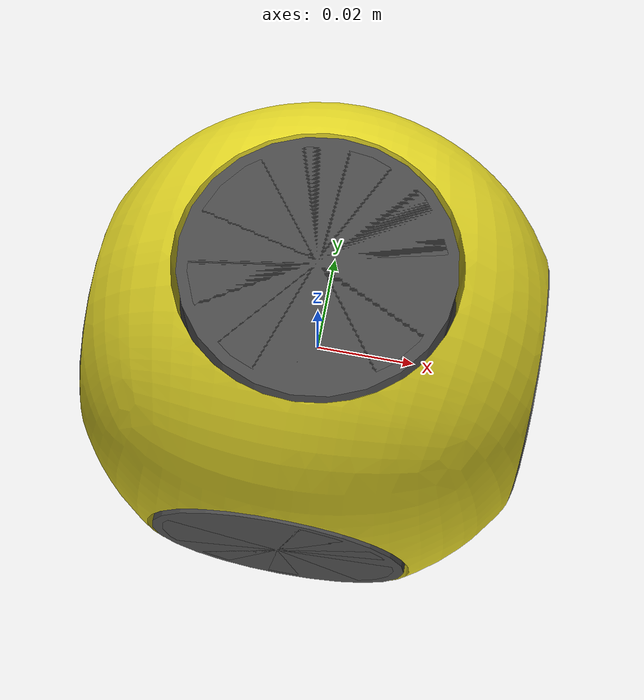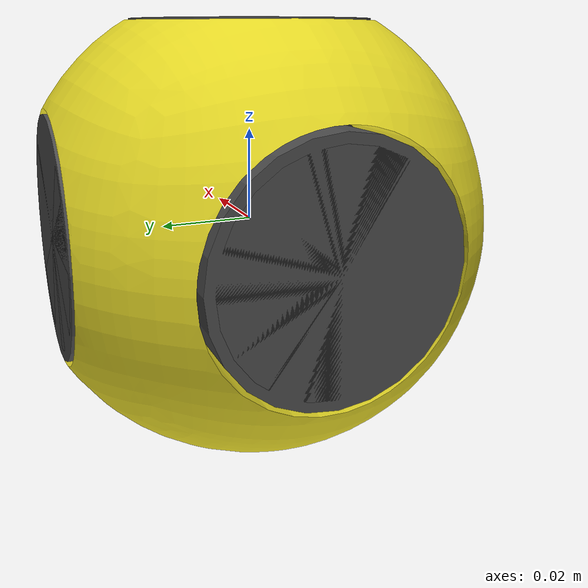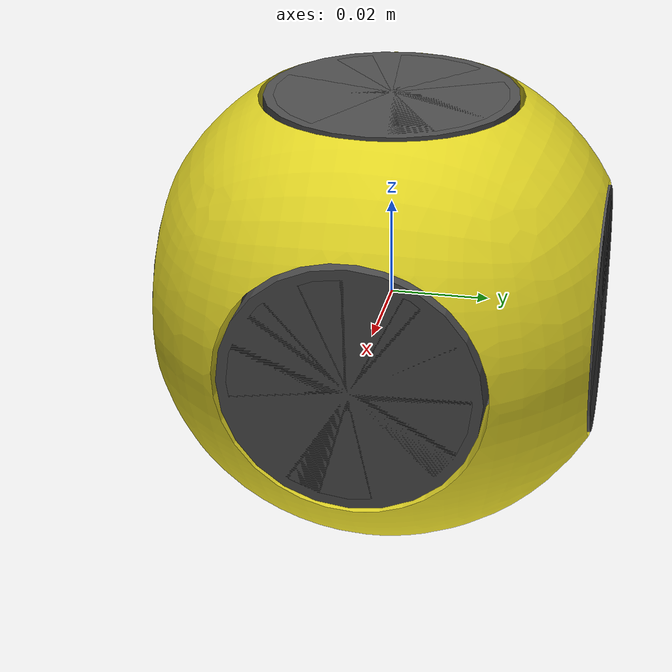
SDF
<?xml version='1.0'?>
<sdf version='1.6'>
    <model name='oneShoeModule'>
        <link name='shoe'>
            <self_collide>false</self_collide>
            <inertial>
                <mass>0.1</mass>
                <inertia>
                    <ixx>4e-04</ixx>
                    <ixy>0</ixy>
                    <ixz>0</ixz>
                    <iyy>4e-04</iyy>
                    <iyz>0</iyz>
                    <izz>4e-04</izz>
                </inertia>
            </inertial>
            <collision name='shoe-collision'>
                <geometry>
                    <mesh>
                        <uri>model://oneShoeModule/meshes/model.obj</uri>
                        <scale>0.001 0.001 0.001</scale>
                    </mesh>
                </geometry>
            </collision>
            <visual name='shoe-visual'>
                <pose>0 0 0 0 0 0</pose>
                <geometry>
                    <mesh>
                        <uri>model://oneShoeModule/meshes/model.obj</uri>
                        <scale>0.001 0.001 0.001</scale>
                    </mesh>
                </geometry>
                <material>
                    <lighting>1</lighting>
                    <script>
                        <uri>file://media/materials/scripts/gazebo.material</uri>
                        <name>Gazebo/Yellow</name>
                    </script>
                    <shader type='pixel'>
                        <normal_map>__default__</normal_map>
                    </shader>
                </material>
            </visual>
        </link>

        <model name='connectorPlusX'>
            <pose>0.043 0 0 -1.5708 0 -1.5708</pose>
            <link name='connectorPlusX__outer'>
                <inertial>
                    <pose>0 0 -8.5e-3 0 0 0</pose>
                    <mass>10e-3</mass>
                    <inertia>
                        <ixx>1.775833e-6</ixx>
                        <iyy>1.775833e-6</iyy>
                        <izz>3.125e-6</izz>
                        <ixy>0.0</ixy>
                        <ixz>0.0</ixz>
                        <iyz>0.0</iyz>
                    </inertia>
                </inertial>
                <collision name='outer-collision'>
                    <pose>0 0 -8.5e-3 0 0 0</pose>
                    <geometry>
                        <cylinder>
                            <radius>25e-3</radius>
                            <length>17e-3</length>
                        </cylinder>
                    </geometry>
                </collision>
                <visual name='outer-visual'>
                    <pose>0 0 -8.5e-3 0 0 0</pose>
                    <geometry>
                        <cylinder>
                            <radius>25e-3</radius>
                            <length>17e-3</length>
                        </cylinder>
                    </geometry>
                    <material>
                        <script>
                            <uri>file://media/materials/scripts/gazebo.material</uri>
                            <name>Gazebo/DarkGrey</name>
                        </script>
                    </material>
                </visual>
            </link>
            <link name='connectorPlusX__inner'>
                <inertial>
                    <pose>0 0 -3.5e-3 0 0 0</pose>
                    <mass>10e-3</mass>
                    <inertia>
                        <ixx>1.3633e-6</ixx>
                        <iyy>1.3633e-6</iyy>
                        <izz>2.645e-6</izz>
                        <ixy>0.0</ixy>
                        <ixz>0.0</ixz>
                        <iyz>0.0</iyz>
                    </inertia>
                </inertial>
                <collision name='inner-collision'>
                    <pose>0 0 -3.5e-3 0 0 0</pose>
                    <geometry>
                        <cylinder>
                            <radius>23e-3</radius>
                            <length>7e-3</length>
                        </cylinder>
                    </geometry>
                </collision>
                <visual name='inner-visual'>
                    <pose>0 0 -3.5e-3 0 0 0</pose>
                    <geometry>
                        <cylinder>
                            <radius>23e-3</radius>
                            <length>7e-3</length>
                        </cylinder>
                    </geometry>
                    <material>
                        <script>
                            <uri>file://media/materials/scripts/gazebo.material</uri>
                            <name>Gazebo/DarkGrey</name>
                        </script>
                    </material>
                </visual>
            </link>
            <joint name='connectorPlusX__extendJoint' type='prismatic'>
                <parent>connectorPlusX__outer</parent>
                <child>connectorPlusX__inner</child>
                <axis>
                    <xyz>0 0 1</xyz>
                    <limit>
                        <lower>0</lower>
                        <upper>7e-3</upper>
                        <effort>50</effort>
                        <velocity>25e-3</velocity>
                    </limit>
                    <dynamics>
                        <friction>0</friction>
                        <spring_reference>0</spring_reference>
                        <spring_stiffness>0</spring_stiffness>
                    </dynamics>
                    <use_parent_model_frame>1</use_parent_model_frame>
                </axis>
            </joint>
            <plugin name='rofi::sim::systems::RoFICoMPlugin' filename='roficomPlugin'>
                <joint>connectorPlusX__extendJoint</joint>
                <extend>false</extend>
            </plugin>
        </model>

        <model name='connectorMinusX'>
            <pose>-0.043 0 0 -1.5708 0 1.5708</pose>
            <link name='connectorMinusX__outer'>
                <inertial>
                    <pose>0 0 -8.5e-3 0 0 0</pose>
                    <mass>10e-3</mass>
                    <inertia>
                        <ixx>1.775833e-6</ixx>
                        <iyy>1.775833e-6</iyy>
                        <izz>3.125e-6</izz>
                        <ixy>0.0</ixy>
                        <ixz>0.0</ixz>
                        <iyz>0.0</iyz>
                    </inertia>
                </inertial>
                <collision name='outer-collision'>
                    <pose>0 0 -8.5e-3 0 0 0</pose>
                    <geometry>
                        <cylinder>
                            <radius>25e-3</radius>
                            <length>17e-3</length>
                        </cylinder>
                    </geometry>
                </collision>
                <visual name='outer-visual'>
                    <pose>0 0 -8.5e-3 0 0 0</pose>
                    <geometry>
                        <cylinder>
                            <radius>25e-3</radius>
                            <length>17e-3</length>
                        </cylinder>
                    </geometry>
                    <material>
                        <script>
                            <uri>file://media/materials/scripts/gazebo.material</uri>
                            <name>Gazebo/DarkGrey</name>
                        </script>
                    </material>
                </visual>
            </link>
            <link name='connectorMinusX__inner'>
                <inertial>
                    <pose>0 0 -3.5e-3 0 0 0</pose>
                    <mass>10e-3</mass>
                    <inertia>
                        <ixx>1.3633e-6</ixx>
                        <iyy>1.3633e-6</iyy>
                        <izz>2.645e-6</izz>
                        <ixy>0.0</ixy>
                        <ixz>0.0</ixz>
                        <iyz>0.0</iyz>
                    </inertia>
                </inertial>
                <collision name='inner-collision'>
                    <pose>0 0 -3.5e-3 0 0 0</pose>
                    <geometry>
                        <cylinder>
                            <radius>23e-3</radius>
                            <length>7e-3</length>
                        </cylinder>
                    </geometry>
                </collision>
                <visual name='inner-visual'>
                    <pose>0 0 -3.5e-3 0 0 0</pose>
                    <geometry>
                        <cylinder>
                            <radius>23e-3</radius>
                            <length>7e-3</length>
                        </cylinder>
                    </geometry>
                    <material>
                        <script>
                            <uri>file://media/materials/scripts/gazebo.material</uri>
                            <name>Gazebo/DarkGrey</name>
                        </script>
                    </material>
                </visual>
            </link>
            <joint name='connectorMinusX__extendJoint' type='prismatic'>
                <parent>connectorMinusX__outer</parent>
                <child>connectorMinusX__inner</child>
                <axis>
                    <xyz>0 0 1</xyz>
                    <limit>
                        <lower>0</lower>
                        <upper>7e-3</upper>
                        <effort>50</effort>
                        <velocity>25e-3</velocity>
                    </limit>
                    <dynamics>
                        <friction>0</friction>
                        <spring_reference>0</spring_reference>
                        <spring_stiffness>0</spring_stiffness>
                    </dynamics>
                    <use_parent_model_frame>1</use_parent_model_frame>
                </axis>
            </joint>
            <plugin name='rofi::sim::systems::RoFICoMPlugin' filename='roficomPlugin'>
                <joint>connectorMinusX__extendJoint</joint>
                <extend>false</extend>
            </plugin>
        </model>

        <model name='connectorPlusY'>
            <pose>0 0.043 0 -1.5708 0 0</pose>
            <link name='connectorPlusY__outer'>
                <inertial>
                    <pose>0 0 -8.5e-3 0 0 0</pose>
                    <mass>10e-3</mass>
                    <inertia>
                        <ixx>1.775833e-6</ixx>
                        <iyy>1.775833e-6</iyy>
                        <izz>3.125e-6</izz>
                        <ixy>0.0</ixy>
                        <ixz>0.0</ixz>
                        <iyz>0.0</iyz>
                    </inertia>
                </inertial>
                <collision name='outer-collision'>
                    <pose>0 0 -8.5e-3 0 0 0</pose>
                    <geometry>
                        <cylinder>
                            <radius>25e-3</radius>
                            <length>17e-3</length>
                        </cylinder>
                    </geometry>
                </collision>
                <visual name='outer-visual'>
                    <pose>0 0 -8.5e-3 0 0 0</pose>
                    <geometry>
                        <cylinder>
                            <radius>25e-3</radius>
                            <length>17e-3</length>
                        </cylinder>
                    </geometry>
                    <material>
                        <script>
                            <uri>file://media/materials/scripts/gazebo.material</uri>
                            <name>Gazebo/DarkGrey</name>
                        </script>
                    </material>
                </visual>
            </link>
            <link name='connectorPlusY__inner'>
                <inertial>
                    <pose>0 0 -3.5e-3 0 0 0</pose>
                    <mass>10e-3</mass>
                    <inertia>
                        <ixx>1.3633e-6</ixx>
                        <iyy>1.3633e-6</iyy>
                        <izz>2.645e-6</izz>
                        <ixy>0.0</ixy>
                        <ixz>0.0</ixz>
                        <iyz>0.0</iyz>
                    </inertia>
                </inertial>
                <collision name='inner-collision'>
                    <pose>0 0 -3.5e-3 0 0 0</pose>
                    <geometry>
                        <cylinder>
                            <radius>23e-3</radius>
                            <length>7e-3</length>
                        </cylinder>
                    </geometry>
                </collision>
                <visual name='inner-visual'>
                    <pose>0 0 -3.5e-3 0 0 0</pose>
                    <geometry>
                        <cylinder>
                            <radius>23e-3</radius>
                            <length>7e-3</length>
                        </cylinder>
                    </geometry>
                    <material>
                        <script>
                            <uri>file://media/materials/scripts/gazebo.material</uri>
                            <name>Gazebo/DarkGrey</name>
                        </script>
                    </material>
                </visual>
            </link>
            <joint name='connectorPlusY__extendJoint' type='prismatic'>
                <parent>connectorPlusY__outer</parent>
                <child>connectorPlusY__inner</child>
                <axis>
                    <xyz>0 0 1</xyz>
                    <limit>
                        <lower>0</lower>
                        <upper>7e-3</upper>
                        <effort>50</effort>
                        <velocity>25e-3</velocity>
                    </limit>
                    <dynamics>
                        <friction>0</friction>
                        <spring_reference>0</spring_reference>
                        <spring_stiffness>0</spring_stiffness>
                    </dynamics>
                    <use_parent_model_frame>1</use_parent_model_frame>
                </axis>
            </joint>
            <plugin name='rofi::sim::systems::RoFICoMPlugin' filename='roficomPlugin'>
                <joint>connectorPlusY__extendJoint</joint>
                <extend>false</extend>
            </plugin>
        </model>

        <model name='connectorMinusY'>
            <pose>0 -0.043 0 1.5708 0 0</pose>
            <link name='connectorMinusY__outer'>
                <inertial>
                    <pose>0 0 -8.5e-3 0 0 0</pose>
                    <mass>10e-3</mass>
                    <inertia>
                        <ixx>1.775833e-6</ixx>
                        <iyy>1.775833e-6</iyy>
                        <izz>3.125e-6</izz>
                        <ixy>0.0</ixy>
                        <ixz>0.0</ixz>
                        <iyz>0.0</iyz>
                    </inertia>
                </inertial>
                <collision name='outer-collision'>
                    <pose>0 0 -8.5e-3 0 0 0</pose>
                    <geometry>
                        <cylinder>
                            <radius>25e-3</radius>
                            <length>17e-3</length>
                        </cylinder>
                    </geometry>
                </collision>
                <visual name='outer-visual'>
                    <pose>0 0 -8.5e-3 0 0 0</pose>
                    <geometry>
                        <cylinder>
                            <radius>25e-3</radius>
                            <length>17e-3</length>
                        </cylinder>
                    </geometry>
                    <material>
                        <script>
                            <uri>file://media/materials/scripts/gazebo.material</uri>
                            <name>Gazebo/DarkGrey</name>
                        </script>
                    </material>
                </visual>
            </link>
            <link name='connectorMinusY__inner'>
                <inertial>
                    <pose>0 0 -3.5e-3 0 0 0</pose>
                    <mass>10e-3</mass>
                    <inertia>
                        <ixx>1.3633e-6</ixx>
                        <iyy>1.3633e-6</iyy>
                        <izz>2.645e-6</izz>
                        <ixy>0.0</ixy>
                        <ixz>0.0</ixz>
                        <iyz>0.0</iyz>
                    </inertia>
                </inertial>
                <collision name='inner-collision'>
                    <pose>0 0 -3.5e-3 0 0 0</pose>
                    <geometry>
                        <cylinder>
                            <radius>23e-3</radius>
                            <length>7e-3</length>
                        </cylinder>
                    </geometry>
                </collision>
                <visual name='inner-visual'>
                    <pose>0 0 -3.5e-3 0 0 0</pose>
                    <geometry>
                        <cylinder>
                            <radius>23e-3</radius>
                            <length>7e-3</length>
                        </cylinder>
                    </geometry>
                    <material>
                        <script>
                            <uri>file://media/materials/scripts/gazebo.material</uri>
                            <name>Gazebo/DarkGrey</name>
                        </script>
                    </material>
                </visual>
            </link>
            <joint name='connectorMinusY__extendJoint' type='prismatic'>
                <parent>connectorMinusY__outer</parent>
                <child>connectorMinusY__inner</child>
                <axis>
                    <xyz>0 0 1</xyz>
                    <limit>
                        <lower>0</lower>
                        <upper>7e-3</upper>
                        <effort>50</effort>
                        <velocity>25e-3</velocity>
                    </limit>
                    <dynamics>
                        <friction>0</friction>
                        <spring_reference>0</spring_reference>
                        <spring_stiffness>0</spring_stiffness>
                    </dynamics>
                    <use_parent_model_frame>1</use_parent_model_frame>
                </axis>
            </joint>
            <plugin name='rofi::sim::systems::RoFICoMPlugin' filename='roficomPlugin'>
                <joint>connectorMinusY__extendJoint</joint>
                <extend>false</extend>
            </plugin>
        </model>

        <model name='connectorPlusZ'>
            <pose>0 0 0.043 0 0 0</pose>
            <link name='connectorPlusZ__outer'>
                <inertial>
                    <pose>0 0 -8.5e-3 0 0 0</pose>
                    <mass>10e-3</mass>
                    <inertia>
                        <ixx>1.775833e-6</ixx>
                        <iyy>1.775833e-6</iyy>
                        <izz>3.125e-6</izz>
                        <ixy>0.0</ixy>
                        <ixz>0.0</ixz>
                        <iyz>0.0</iyz>
                    </inertia>
                </inertial>
                <collision name='outer-collision'>
                    <pose>0 0 -8.5e-3 0 0 0</pose>
                    <geometry>
                        <cylinder>
                            <radius>25e-3</radius>
                            <length>17e-3</length>
                        </cylinder>
                    </geometry>
                </collision>
                <visual name='outer-visual'>
                    <pose>0 0 -8.5e-3 0 0 0</pose>
                    <geometry>
                        <cylinder>
                            <radius>25e-3</radius>
                            <length>17e-3</length>
                        </cylinder>
                    </geometry>
                    <material>
                        <script>
                            <uri>file://media/materials/scripts/gazebo.material</uri>
                            <name>Gazebo/DarkGrey</name>
                        </script>
                    </material>
                </visual>
            </link>
            <link name='connectorPlusZ__inner'>
                <inertial>
                    <pose>0 0 -3.5e-3 0 0 0</pose>
                    <mass>10e-3</mass>
                    <inertia>
                        <ixx>1.3633e-6</ixx>
                        <iyy>1.3633e-6</iyy>
                        <izz>2.645e-6</izz>
                        <ixy>0.0</ixy>
                        <ixz>0.0</ixz>
                        <iyz>0.0</iyz>
                    </inertia>
                </inertial>
                <collision name='inner-collision'>
                    <pose>0 0 -3.5e-3 0 0 0</pose>
                    <geometry>
                        <cylinder>
                            <radius>23e-3</radius>
                            <length>7e-3</length>
                        </cylinder>
                    </geometry>
                </collision>
                <visual name='inner-visual'>
                    <pose>0 0 -3.5e-3 0 0 0</pose>
                    <geometry>
                        <cylinder>
                            <radius>23e-3</radius>
                            <length>7e-3</length>
                        </cylinder>
                    </geometry>
                    <material>
                        <script>
                            <uri>file://media/materials/scripts/gazebo.material</uri>
                            <name>Gazebo/DarkGrey</name>
                        </script>
                    </material>
                </visual>
            </link>
            <joint name='connectorPlusZ__extendJoint' type='prismatic'>
                <parent>connectorPlusZ__outer</parent>
                <child>connectorPlusZ__inner</child>
                <axis>
                    <xyz>0 0 1</xyz>
                    <limit>
                        <lower>0</lower>
                        <upper>7e-3</upper>
                        <effort>50</effort>
                        <velocity>25e-3</velocity>
                    </limit>
                    <dynamics>
                        <friction>0</friction>
                        <spring_reference>0</spring_reference>
                        <spring_stiffness>0</spring_stiffness>
                    </dynamics>
                    <use_parent_model_frame>1</use_parent_model_frame>
                </axis>
            </joint>
            <plugin name='rofi::sim::systems::RoFICoMPlugin' filename='roficomPlugin'>
                <joint>connectorPlusZ__extendJoint</joint>
                <extend>false</extend>
            </plugin>
        </model>

        <model name='connectorMinusZ'>
            <pose>0 0 -0.043 3.1416 0 0</pose>
            <link name='connectorMinusZ__outer'>
                <inertial>
                    <pose>0 0 -8.5e-3 0 0 0</pose>
                    <mass>10e-3</mass>
                    <inertia>
                        <ixx>1.775833e-6</ixx>
                        <iyy>1.775833e-6</iyy>
                        <izz>3.125e-6</izz>
                        <ixy>0.0</ixy>
                        <ixz>0.0</ixz>
                        <iyz>0.0</iyz>
                    </inertia>
                </inertial>
                <collision name='outer-collision'>
                    <pose>0 0 -8.5e-3 0 0 0</pose>
                    <geometry>
                        <cylinder>
                            <radius>25e-3</radius>
                            <length>17e-3</length>
                        </cylinder>
                    </geometry>
                </collision>
                <visual name='outer-visual'>
                    <pose>0 0 -8.5e-3 0 0 0</pose>
                    <geometry>
                        <cylinder>
                            <radius>25e-3</radius>
                            <length>17e-3</length>
                        </cylinder>
                    </geometry>
                    <material>
                        <script>
                            <uri>file://media/materials/scripts/gazebo.material</uri>
                            <name>Gazebo/DarkGrey</name>
                        </script>
                    </material>
                </visual>
            </link>
            <link name='connectorMinusZ__inner'>
                <inertial>
                    <pose>0 0 -3.5e-3 0 0 0</pose>
                    <mass>10e-3</mass>
                    <inertia>
                        <ixx>1.3633e-6</ixx>
                        <iyy>1.3633e-6</iyy>
                        <izz>2.645e-6</izz>
                        <ixy>0.0</ixy>
                        <ixz>0.0</ixz>
                        <iyz>0.0</iyz>
                    </inertia>
                </inertial>
                <collision name='inner-collision'>
                    <pose>0 0 -3.5e-3 0 0 0</pose>
                    <geometry>
                        <cylinder>
                            <radius>23e-3</radius>
                            <length>7e-3</length>
                        </cylinder>
                    </geometry>
                </collision>
                <visual name='inner-visual'>
                    <pose>0 0 -3.5e-3 0 0 0</pose>
                    <geometry>
                        <cylinder>
                            <radius>23e-3</radius>
                            <length>7e-3</length>
                        </cylinder>
                    </geometry>
                    <material>
                        <script>
                            <uri>file://media/materials/scripts/gazebo.material</uri>
                            <name>Gazebo/DarkGrey</name>
                        </script>
                    </material>
                </visual>
            </link>
            <joint name='connectorMinusZ__extendJoint' type='prismatic'>
                <parent>connectorMinusZ__outer</parent>
                <child>connectorMinusZ__inner</child>
                <axis>
                    <xyz>0 0 1</xyz>
                    <limit>
                        <lower>0</lower>
                        <upper>7e-3</upper>
                        <effort>50</effort>
                        <velocity>25e-3</velocity>
                    </limit>
                    <dynamics>
                        <friction>0</friction>
                        <spring_reference>0</spring_reference>
                        <spring_stiffness>0</spring_stiffness>
                    </dynamics>
                    <use_parent_model_frame>1</use_parent_model_frame>
                </axis>
            </joint>
            <plugin name='rofi::sim::systems::RoFICoMPlugin' filename='roficomPlugin'>
                <joint>connectorMinusZ__extendJoint</joint>
                <extend>false</extend>
            </plugin>
        </model>

        <joint name='connectorPlusXJoint' type='fixed'>
            <child>connectorPlusX::connectorPlusX__outer</child>
            <parent>shoe</parent>
        </joint>

        <joint name='connectorMinusXJoint' type='fixed'>
            <child>connectorMinusX::connectorMinusX__outer</child>
            <parent>shoe</parent>
        </joint>

        <joint name='connectorPlusYJoint' type='fixed'>
            <child>connectorPlusY::connectorPlusY__outer</child>
            <parent>shoe</parent>
        </joint>

        <joint name='connectorMinusYJoint' type='fixed'>
            <child>connectorMinusY::connectorMinusY__outer</child>
            <parent>shoe</parent>
        </joint>

        <joint name='connectorPlusZJoint' type='fixed'>
            <child>connectorPlusZ::connectorPlusZ__outer</child>
            <parent>shoe</parent>
        </joint>

        <joint name='connectorMinusZJoint' type='fixed'>
            <child>connectorMinusZ::connectorMinusZ__outer</child>
            <parent>shoe</parent>
        </joint>

        <plugin name='rofi::sim::systems::RoFIModulePlugin' filename='rofiModulePlugin'/>
    </model>
</sdf>
